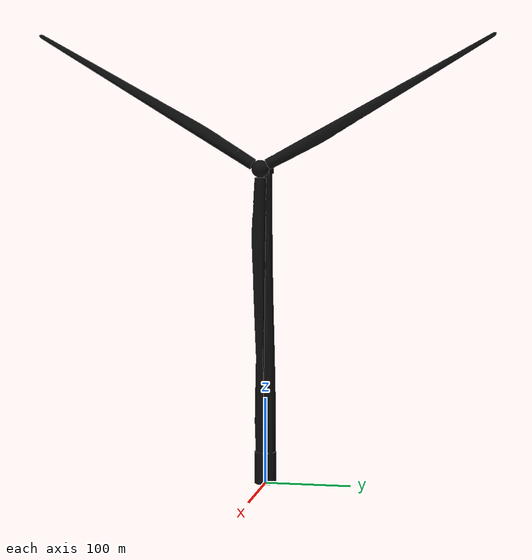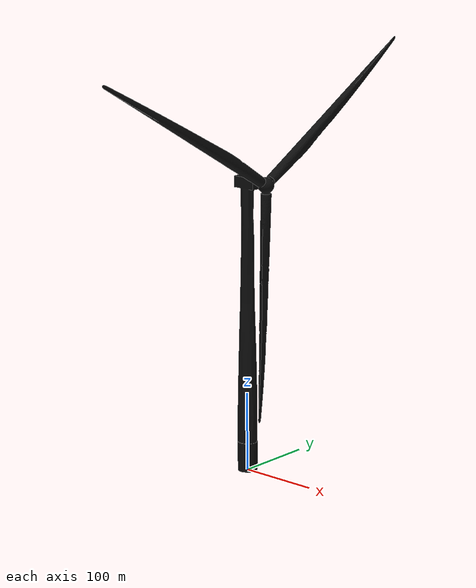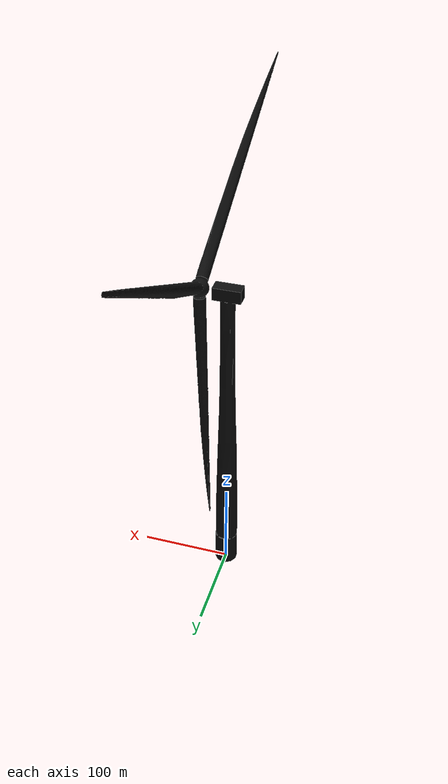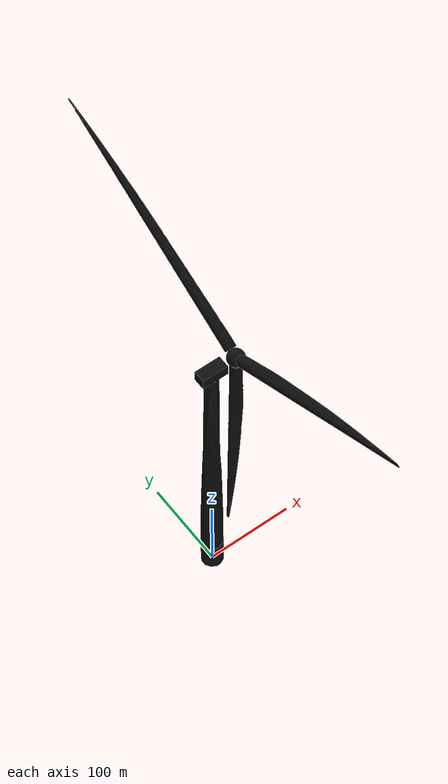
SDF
<?xml version='1.0'?>
<sdf version='1.9'>
  <model name='turbine'>
    <static>true</static>
    <pose>0 0 0 0 0 0</pose>
    <link name='base_link'>
      <visual name='base_visual'>
        <geometry>
          <mesh>
            <uri>model://turbine/meshes/turbine_vertical.stl</uri>
            <scale>.25 .25 .25</scale>
          </mesh>
        </geometry>
        <material>
          <ambient>0.05 0.05 0.05</ambient>
          <diffuse>0.05 0.05 0.05</diffuse>
          <specular>1 1 1 1</specular>
          <pbr>
            <metal>
              <metalness>0.5</metalness>
              <roughness>0.5</roughness>
            </metal>
          </pbr>
        </material>
      </visual>
    </link>
  </model>
</sdf>
